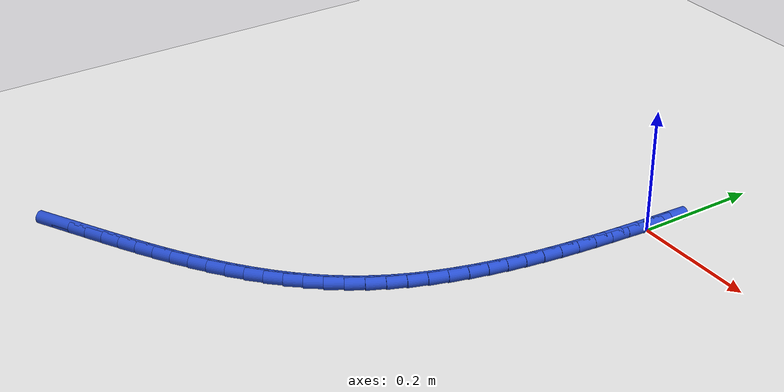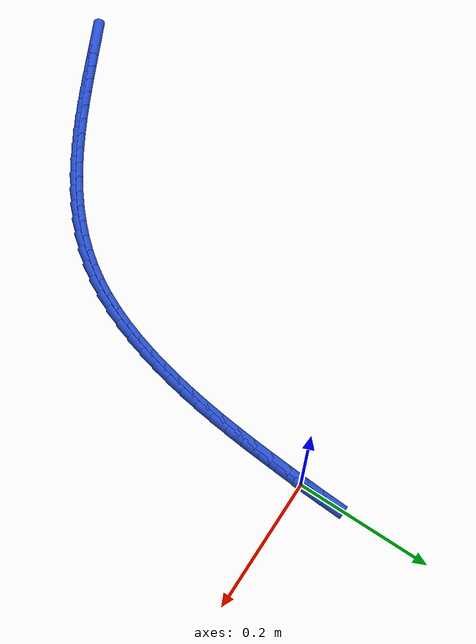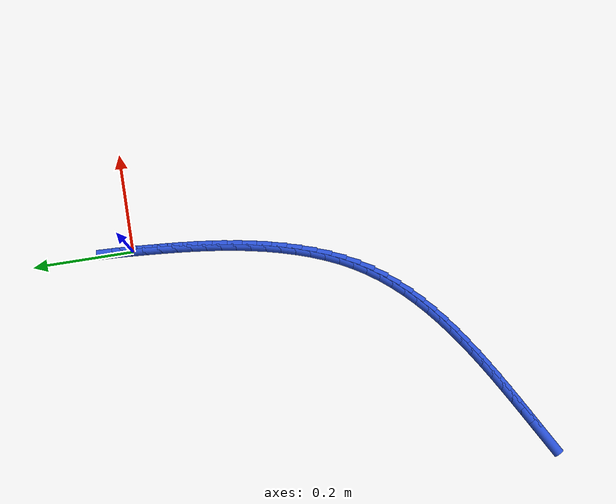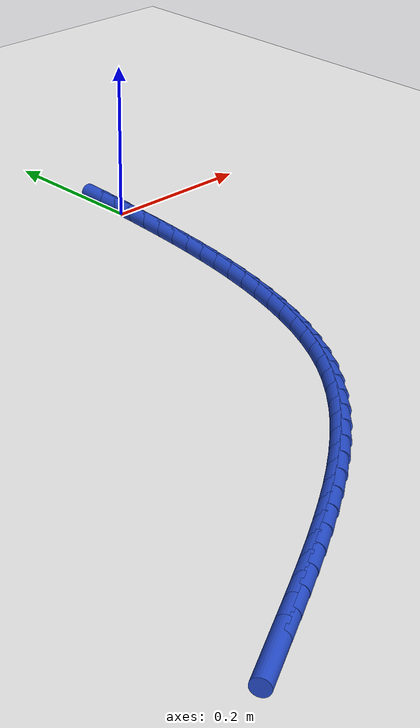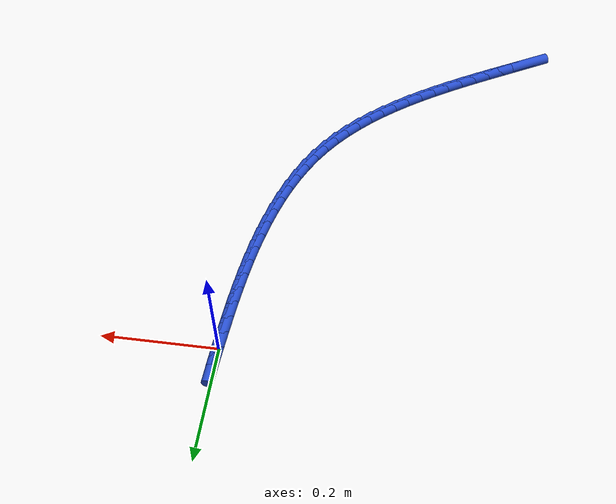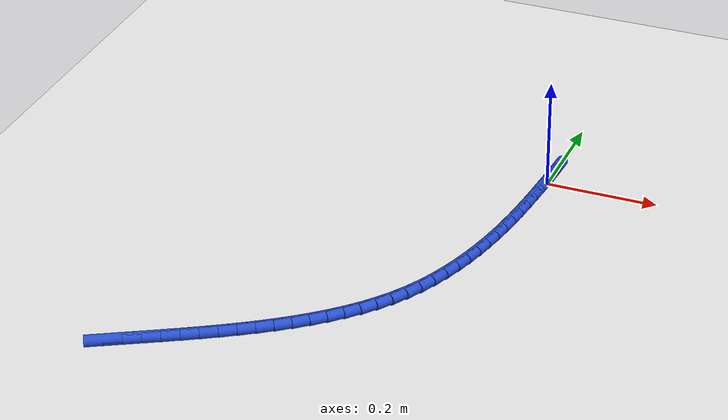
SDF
<sdf version="1.6">
 <world name="default">
  <model name="ground_plane">
   <static>1</static>
   <link name="link">
    <collision name="collision">
     <geometry><plane><normal>0 0 1</normal><size>100 100</size></plane></geometry>
     <surface><friction><ode><mu>100</mu><mu2>50</mu2></ode></friction></surface>
    </collision>
    <visual name="visual">
     <cast_shadows>0</cast_shadows>
     <geometry><plane><normal>0 0 1</normal><size>100 100</size></plane></geometry>
     <material>
      <script><uri>file://media/materials/scripts/gazebo.material</uri><name>Gazebo/WhiteGlow</name></script>
     </material>
    </visual>
   </link>
  </model>
  <model name="line">
   <link name="link_0">
    <pose>-8.239936510889834e-18 -2.7755575615628914e-17 0.01 0 1.57 1.5055367131819806</pose>
    <collision name="collision">
     <geometry><cylinder><radius>0.01</radius><length>0.08</length></cylinder></geometry>
    </collision>
    <visual name="visual">
     <material>
      <script><name>Gazebo/Blue</name><uri>file://media/materials/scripts/gazebo.material</uri></script>
     </material>
     <geometry><cylinder><radius>0.01</radius><length>0.08</length></cylinder></geometry>
    </visual>
   </link>
   <link name="link_1">
    <pose>0.0020054013227905018 0.03068595604713026 0.01 0 1.57 1.5248557876471254</pose>
    <collision name="collision">
     <geometry><cylinder><radius>0.01</radius><length>0.08</length></cylinder></geometry>
    </collision>
    <visual name="visual">
     <material>
      <script><name>Gazebo/Blue</name><uri>file://media/materials/scripts/gazebo.material</uri></script>
     </material>
     <geometry><cylinder><radius>0.01</radius><length>0.08</length></cylinder></geometry>
    </visual>
   </link>
   <link name="link_248">
    <pose>-0.48989853893008933 -0.7374180304072989 0.01 0 1.57 0.5044143740321366</pose>
    <collision name="collision">
     <geometry><cylinder><radius>0.01</radius><length>0.08</length></cylinder></geometry>
    </collision>
    <visual name="visual">
     <material>
      <script><name>Gazebo/Blue</name><uri>file://media/materials/scripts/gazebo.material</uri></script>
     </material>
     <geometry><cylinder><radius>0.01</radius><length>0.08</length></cylinder></geometry>
    </visual>
   </link>
   <link name="link_249">
    <pose>-0.4630766256125129 -0.722611041129455 0.01 0 1.57 0.50437948929989</pose>
    <collision name="collision">
     <geometry><cylinder><radius>0.01</radius><length>0.08</length></cylinder></geometry>
    </collision>
    <visual name="visual">
     <material>
      <script><name>Gazebo/Blue</name><uri>file://media/materials/scripts/gazebo.material</uri></script>
     </material>
     <geometry><cylinder><radius>0.01</radius><length>0.08</length></cylinder></geometry>
    </visual>
   </link>
   <link name="link_250">
    <pose>-0.4361955150140531 -0.7077725955985018 0.01 0 1.57 0.5081587912555472</pose>
    <collision name="collision">
     <geometry><cylinder><radius>0.01</radius><length>0.08</length></cylinder></geometry>
    </collision>
    <visual name="visual">
     <material>
      <script><name>Gazebo/Blue</name><uri>file://media/materials/scripts/gazebo.material</uri></script>
     </material>
     <geometry><cylinder><radius>0.01</radius><length>0.08</length></cylinder></geometry>
    </visual>
   </link>
   <link name="link_251">
    <pose>-0.40935884651182725 -0.692826076517442 0.01 0 1.57 0.5157667226720098</pose>
    <collision name="collision">
     <geometry><cylinder><radius>0.01</radius><length>0.08</length></cylinder></geometry>
    </collision>
    <visual name="visual">
     <material>
      <script><name>Gazebo/Blue</name><uri>file://media/materials/scripts/gazebo.material</uri></script>
     </material>
     <geometry><cylinder><radius>0.01</radius><length>0.08</length></cylinder></geometry>
    </visual>
   </link>
   <link name="link_252">
    <pose>-0.3826702594829526 -0.6776948665892786 0.01 0 1.57 0.527255967315993</pose>
    <collision name="collision">
     <geometry><cylinder><radius>0.01</radius><length>0.08</length></cylinder></geometry>
    </collision>
    <visual name="visual">
     <material>
      <script><name>Gazebo/Blue</name><uri>file://media/materials/scripts/gazebo.material</uri></script>
     </material>
     <geometry><cylinder><radius>0.01</radius><length>0.08</length></cylinder></geometry>
    </visual>
   </link>
   <link name="link_253">
    <pose>-0.35623339330454834 -0.6623023485170152 0.01 0 1.57 0.5427151174693966</pose>
    <collision name="collision">
     <geometry><cylinder><radius>0.01</radius><length>0.08</length></cylinder></geometry>
    </collision>
    <visual name="visual">
     <material>
      <script><name>Gazebo/Blue</name><uri>file://media/materials/scripts/gazebo.material</uri></script>
     </material>
     <geometry><cylinder><radius>0.01</radius><length>0.08</length></cylinder></geometry>
    </visual>
   </link>
   <link name="link_254">
    <pose>-0.33015188735373097 -0.6465719050036539 0.01 0 1.57 0.562265172277545</pose>
    <collision name="collision">
     <geometry><cylinder><radius>0.01</radius><length>0.08</length></cylinder></geometry>
    </collision>
    <visual name="visual">
     <material>
      <script><name>Gazebo/Blue</name><uri>file://media/materials/scripts/gazebo.material</uri></script>
     </material>
     <geometry><cylinder><radius>0.01</radius><length>0.08</length></cylinder></geometry>
    </visual>
   </link>
   <link name="link_255">
    <pose>-0.3045293810076185 -0.6304269187521984 0.01 0 1.57 0.5860543148409321</pose>
    <collision name="collision">
     <geometry><cylinder><radius>0.01</radius><length>0.08</length></cylinder></geometry>
    </collision>
    <visual name="visual">
     <material>
      <script><name>Gazebo/Blue</name><uri>file://media/materials/scripts/gazebo.material</uri></script>
     </material>
     <geometry><cylinder><radius>0.01</radius><length>0.08</length></cylinder></geometry>
    </visual>
   </link>
   <link name="link_256">
    <pose>-0.2794695136433284 -0.6137907724656512 0.01 0 1.57 0.6142502151503071</pose>
    <collision name="collision">
     <geometry><cylinder><radius>0.01</radius><length>0.08</length></cylinder></geometry>
    </collision>
    <visual name="visual">
     <material>
      <script><name>Gazebo/Blue</name><uri>file://media/materials/scripts/gazebo.material</uri></script>
     </material>
     <geometry><cylinder><radius>0.01</radius><length>0.08</length></cylinder></geometry>
    </visual>
   </link>
   <link name="link_257">
    <pose>-0.25507592463797846 -0.5965868488470154 0.01 0 1.57 0.6470289275386454</pose>
    <collision name="collision">
     <geometry><cylinder><radius>0.01</radius><length>0.08</length></cylinder></geometry>
    </collision>
    <visual name="visual">
     <material>
      <script><name>Gazebo/Blue</name><uri>file://media/materials/scripts/gazebo.material</uri></script>
     </material>
     <geometry><cylinder><radius>0.01</radius><length>0.08</length></cylinder></geometry>
    </visual>
   </link>
   <link name="link_258">
    <pose>-0.2314522533686862 -0.5787385305992938 0.01 0 1.57 0.6845593521657389</pose>
    <collision name="collision">
     <geometry><cylinder><radius>0.01</radius><length>0.08</length></cylinder></geometry>
    </collision>
    <visual name="visual">
     <material>
      <script><name>Gazebo/Blue</name><uri>file://media/materials/scripts/gazebo.material</uri></script>
     </material>
     <geometry><cylinder><radius>0.01</radius><length>0.08</length></cylinder></geometry>
    </visual>
   </link>
   <link name="link_259">
    <pose>-0.20870213921256928 -0.5601692004254897 0.01 0 1.57 0.7269823121349108</pose>
    <collision name="collision">
     <geometry><cylinder><radius>0.01</radius><length>0.08</length></cylinder></geometry>
    </collision>
    <visual name="visual">
     <material>
      <script><name>Gazebo/Blue</name><uri>file://media/materials/scripts/gazebo.material</uri></script>
     </material>
     <geometry><cylinder><radius>0.01</radius><length>0.08</length></cylinder></geometry>
    </visual>
   </link>
   <link name="link_260">
    <pose>-0.18692922154674546 -0.5408022410286056 0.01 0 1.57 0.7743837134635997</pose>
    <collision name="collision">
     <geometry><cylinder><radius>0.01</radius><length>0.08</length></cylinder></geometry>
    </collision>
    <visual name="visual">
     <material>
      <script><name>Gazebo/Blue</name><uri>file://media/materials/scripts/gazebo.material</uri></script>
     </material>
     <geometry><cylinder><radius>0.01</radius><length>0.08</length></cylinder></geometry>
    </visual>
   </link>
   <link name="link_261">
    <pose>-0.16623713974833165 -0.5205610351116443 0.01 0 1.57 0.8267621871058906</pose>
    <collision name="collision">
     <geometry><cylinder><radius>0.01</radius><length>0.08</length></cylinder></geometry>
    </collision>
    <visual name="visual">
     <material>
      <script><name>Gazebo/Blue</name><uri>file://media/materials/scripts/gazebo.material</uri></script>
     </material>
     <geometry><cylinder><radius>0.01</radius><length>0.08</length></cylinder></geometry>
    </visual>
   </link>
   <link name="link_262">
    <pose>-0.14672953319444684 -0.49936896537760955 0.01 0 1.57 0.8839932026006555</pose>
    <collision name="collision">
     <geometry><cylinder><radius>0.01</radius><length>0.08</length></cylinder></geometry>
    </collision>
    <visual name="visual">
     <material>
      <script><name>Gazebo/Blue</name><uri>file://media/materials/scripts/gazebo.material</uri></script>
     </material>
     <geometry><cylinder><radius>0.01</radius><length>0.08</length></cylinder></geometry>
    </visual>
   </link>
   <link name="link_263">
    <pose>-0.128510041262208 -0.47714941452950393 0.01 0 1.57 0.945793848665956</pose>
    <collision name="collision">
     <geometry><cylinder><radius>0.01</radius><length>0.08</length></cylinder></geometry>
    </collision>
    <visual name="visual">
     <material>
      <script><name>Gazebo/Blue</name><uri>file://media/materials/scripts/gazebo.material</uri></script>
     </material>
     <geometry><cylinder><radius>0.01</radius><length>0.08</length></cylinder></geometry>
    </visual>
   </link>
   <link name="link_264">
    <pose>-0.1116823033287328 -0.4538257652703305 0.01 0 1.57 1.0116841705265718</pose>
    <collision name="collision">
     <geometry><cylinder><radius>0.01</radius><length>0.08</length></cylinder></geometry>
    </collision>
    <visual name="visual">
     <material>
      <script><name>Gazebo/Blue</name><uri>file://media/materials/scripts/gazebo.material</uri></script>
     </material>
     <geometry><cylinder><radius>0.01</radius><length>0.08</length></cylinder></geometry>
    </visual>
   </link>
   <link name="link_265">
    <pose>-0.09634975899893784 -0.4293216642306639 0.01 0 1.57 1.0782333899032102</pose>
    <collision name="collision">
     <geometry><cylinder><radius>0.01</radius><length>0.08</length></cylinder></geometry>
    </collision>
    <visual name="visual">
     <material>
      <script><name>Gazebo/Blue</name><uri>file://media/materials/scripts/gazebo.material</uri></script>
     </material>
     <geometry><cylinder><radius>0.01</radius><length>0.08</length></cylinder></geometry>
    </visual>
   </link>
   <link name="link_266">
    <pose>-0.08256226528259852 -0.40363154829200176 0.01 0 1.57 1.138763872632216</pose>
    <collision name="collision">
     <geometry><cylinder><radius>0.01</radius><length>0.08</length></cylinder></geometry>
    </collision>
    <visual name="visual">
     <material>
      <script><name>Gazebo/Blue</name><uri>file://media/materials/scripts/gazebo.material</uri></script>
     </material>
     <geometry><cylinder><radius>0.01</radius><length>0.08</length></cylinder></geometry>
    </visual>
   </link>
   <link name="link_267">
    <pose>-0.070244077239118 -0.3769157924274881 0.01 0 1.57 1.1928047421765444</pose>
    <collision name="collision">
     <geometry><cylinder><radius>0.01</radius><length>0.08</length></cylinder></geometry>
    </collision>
    <visual name="visual">
     <material>
      <script><name>Gazebo/Blue</name><uri>file://media/materials/scripts/gazebo.material</uri></script>
     </material>
     <geometry><cylinder><radius>0.01</radius><length>0.08</length></cylinder></geometry>
    </visual>
   </link>
   <link name="link_268">
    <pose>-0.059301475807783964 -0.3493585179866732 0.01 0 1.57 1.240907125779566</pose>
    <collision name="collision">
     <geometry><cylinder><radius>0.01</radius><length>0.08</length></cylinder></geometry>
    </collision>
    <visual name="visual">
     <material>
      <script><name>Gazebo/Blue</name><uri>file://media/materials/scripts/gazebo.material</uri></script>
     </material>
     <geometry><cylinder><radius>0.01</radius><length>0.08</length></cylinder></geometry>
    </visual>
   </link>
   <link name="link_269">
    <pose>-0.04964074192788415 -0.321143846319108 0.01 0 1.57 1.2836238500138493</pose>
    <collision name="collision">
     <geometry><cylinder><radius>0.01</radius><length>0.08</length></cylinder></geometry>
    </collision>
    <visual name="visual">
     <material>
      <script><name>Gazebo/Blue</name><uri>file://media/materials/scripts/gazebo.material</uri></script>
     </material>
     <geometry><cylinder><radius>0.01</radius><length>0.08</length></cylinder></geometry>
    </visual>
   </link>
   <link name="link_270">
    <pose>-0.041168156538706084 -0.29245589877434225 0.01 0 1.57 1.3214739754526243</pose>
    <collision name="collision">
     <geometry><cylinder><radius>0.01</radius><length>0.08</length></cylinder></geometry>
    </collision>
    <visual name="visual">
     <material>
      <script><name>Gazebo/Blue</name><uri>file://media/materials/scripts/gazebo.material</uri></script>
     </material>
     <geometry><cylinder><radius>0.01</radius><length>0.08</length></cylinder></geometry>
    </visual>
   </link>
   <link name="link_271">
    <pose>-0.03379000057953802 -0.26347879670192836 0.01 0 1.57 1.3549225527312594</pose>
    <collision name="collision">
     <geometry><cylinder><radius>0.01</radius><length>0.08</length></cylinder></geometry>
    </collision>
    <visual name="visual">
     <material>
      <script><name>Gazebo/Blue</name><uri>file://media/materials/scripts/gazebo.material</uri></script>
     </material>
     <geometry><cylinder><radius>0.01</radius><length>0.08</length></cylinder></geometry>
    </visual>
   </link>
   <link name="link_272">
    <pose>-0.027412554989667427 -0.23439666145141616 0.01 0 1.57 1.3844110190003123</pose>
    <collision name="collision">
     <geometry><cylinder><radius>0.01</radius><length>0.08</length></cylinder></geometry>
    </collision>
    <visual name="visual">
     <material>
      <script><name>Gazebo/Blue</name><uri>file://media/materials/scripts/gazebo.material</uri></script>
     </material>
     <geometry><cylinder><radius>0.01</radius><length>0.08</length></cylinder></geometry>
    </visual>
   </link>
   <link name="link_273">
    <pose>-0.021941546908812486 -0.20538414108214573 0.01 0 1.57 1.4107582580070792</pose>
    <collision name="collision">
     <geometry><cylinder><radius>0.01</radius><length>0.08</length></cylinder></geometry>
    </collision>
    <visual name="visual">
     <material>
      <script><name>Gazebo/Blue</name><uri>file://media/materials/scripts/gazebo.material</uri></script>
     </material>
     <geometry><cylinder><radius>0.01</radius><length>0.08</length></cylinder></geometry>
    </visual>
   </link>
   <link name="link_274">
    <pose>-0.017274122022530567 -0.17646908937956546 0.01 0 1.57 1.4341882070085439</pose>
    <collision name="collision">
     <geometry><cylinder><radius>0.01</radius><length>0.08</length></cylinder></geometry>
    </collision>
    <visual name="visual">
     <material>
      <script><name>Gazebo/Blue</name><uri>file://media/materials/scripts/gazebo.material</uri></script>
     </material>
     <geometry><cylinder><radius>0.01</radius><length>0.08</length></cylinder></geometry>
    </visual>
   </link>
   <link name="link_275">
    <pose>-0.013300665806404755 -0.14756372004110016 0.01 0 1.57 1.4543989448327552</pose>
    <collision name="collision">
     <geometry><cylinder><radius>0.01</radius><length>0.08</length></cylinder></geometry>
    </collision>
    <visual name="visual">
     <material>
      <script><name>Gazebo/Blue</name><uri>file://media/materials/scripts/gazebo.material</uri></script>
     </material>
     <geometry><cylinder><radius>0.01</radius><length>0.08</length></cylinder></geometry>
    </visual>
   </link>
   <link name="link_276">
    <pose>-0.009911380695345987 -0.11857711567216422 0.01 0 1.57 1.4711604111526633</pose>
    <collision name="collision">
     <geometry><cylinder><radius>0.01</radius><length>0.08</length></cylinder></geometry>
    </collision>
    <visual name="visual">
     <material>
      <script><name>Gazebo/Blue</name><uri>file://media/materials/scripts/gazebo.material</uri></script>
     </material>
     <geometry><cylinder><radius>0.01</radius><length>0.08</length></cylinder></geometry>
    </visual>
   </link>
   <link name="link_277">
    <pose>-0.006996469124265198 -0.08941835887817201 0.01 0 1.57 1.4843306982662878</pose>
    <collision name="collision">
     <geometry><cylinder><radius>0.01</radius><length>0.08</length></cylinder></geometry>
    </collision>
    <visual name="visual">
     <material>
      <script><name>Gazebo/Blue</name><uri>file://media/materials/scripts/gazebo.material</uri></script>
     </material>
     <geometry><cylinder><radius>0.01</radius><length>0.08</length></cylinder></geometry>
    </visual>
   </link>
   <link name="link_278">
    <pose>-0.004446133528073326 -0.05999653226453784 0.01 0 1.57 1.4938538325136053</pose>
    <collision name="collision">
     <geometry><cylinder><radius>0.01</radius><length>0.08</length></cylinder></geometry>
    </collision>
    <visual name="visual">
     <material>
      <script><name>Gazebo/Blue</name><uri>file://media/materials/scripts/gazebo.material</uri></script>
     </material>
     <geometry><cylinder><radius>0.01</radius><length>0.08</length></cylinder></geometry>
    </visual>
   </link>
   <link name="link_279">
    <pose>-0.002150576341681233 -0.03022071843667506 0.01 0 1.57 1.4997537700202133</pose>
    <collision name="collision">
     <geometry><cylinder><radius>0.01</radius><length>0.08</length></cylinder></geometry>
    </collision>
    <visual name="visual">
     <material>
      <script><name>Gazebo/Blue</name><uri>file://media/materials/scripts/gazebo.material</uri></script>
     </material>
     <geometry><cylinder><radius>0.01</radius><length>0.08</length></cylinder></geometry>
    </visual>
   </link>
   <link name="link_280">
    <pose>3.0357660829594124e-18 1.249000902703301e-16 0.01 0 1.57 1.5021258312150771</pose>
    <collision name="collision">
     <geometry><cylinder><radius>0.01</radius><length>0.08</length></cylinder></geometry>
    </collision>
    <visual name="visual">
     <material>
      <script><name>Gazebo/Blue</name><uri>file://media/materials/scripts/gazebo.material</uri></script>
     </material>
     <geometry><cylinder><radius>0.01</radius><length>0.08</length></cylinder></geometry>
    </visual>
   </link>
  </model>
 </world>
</sdf>
